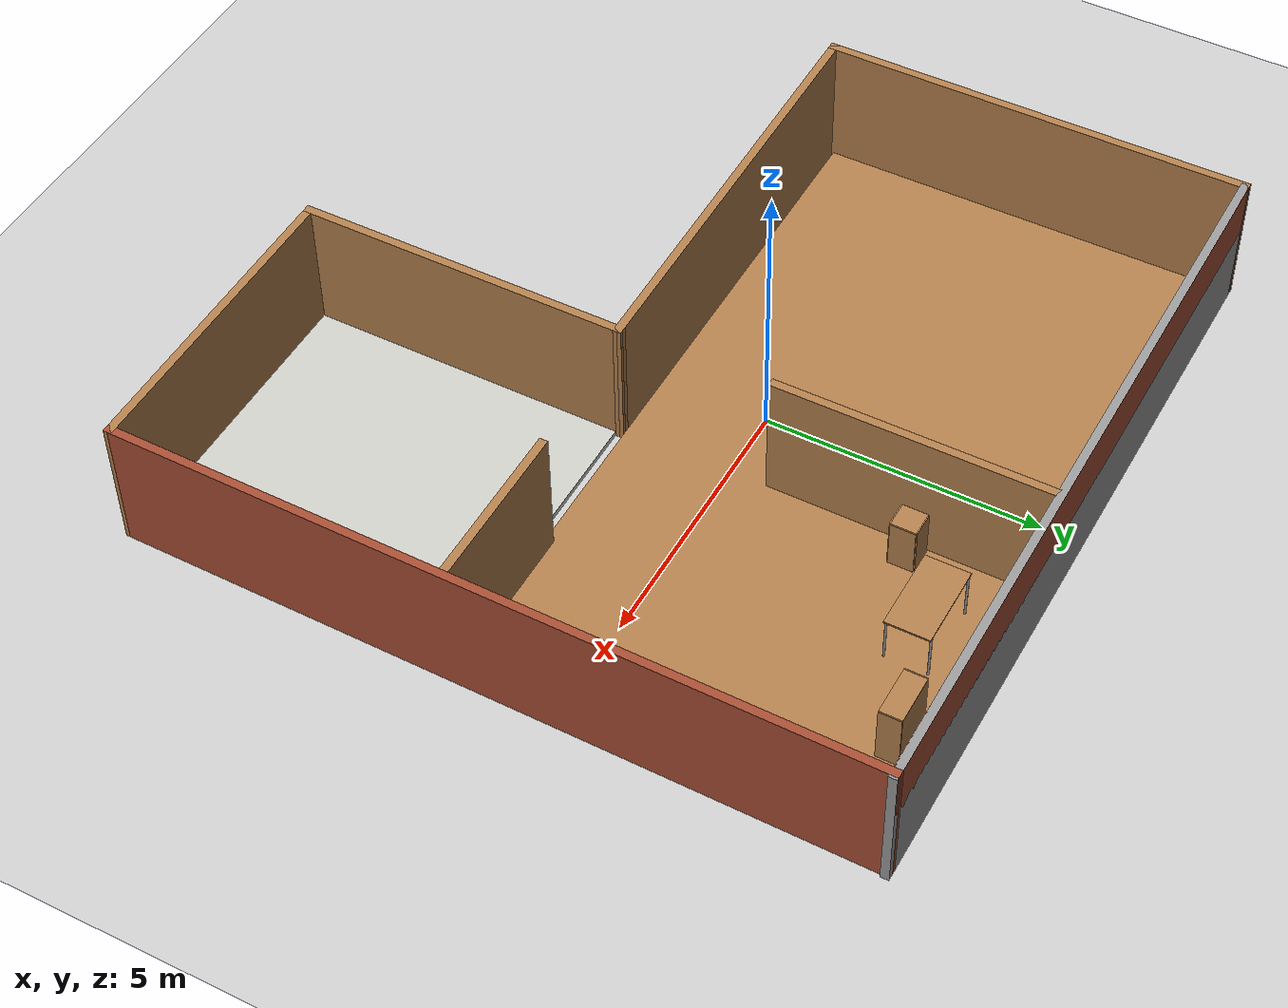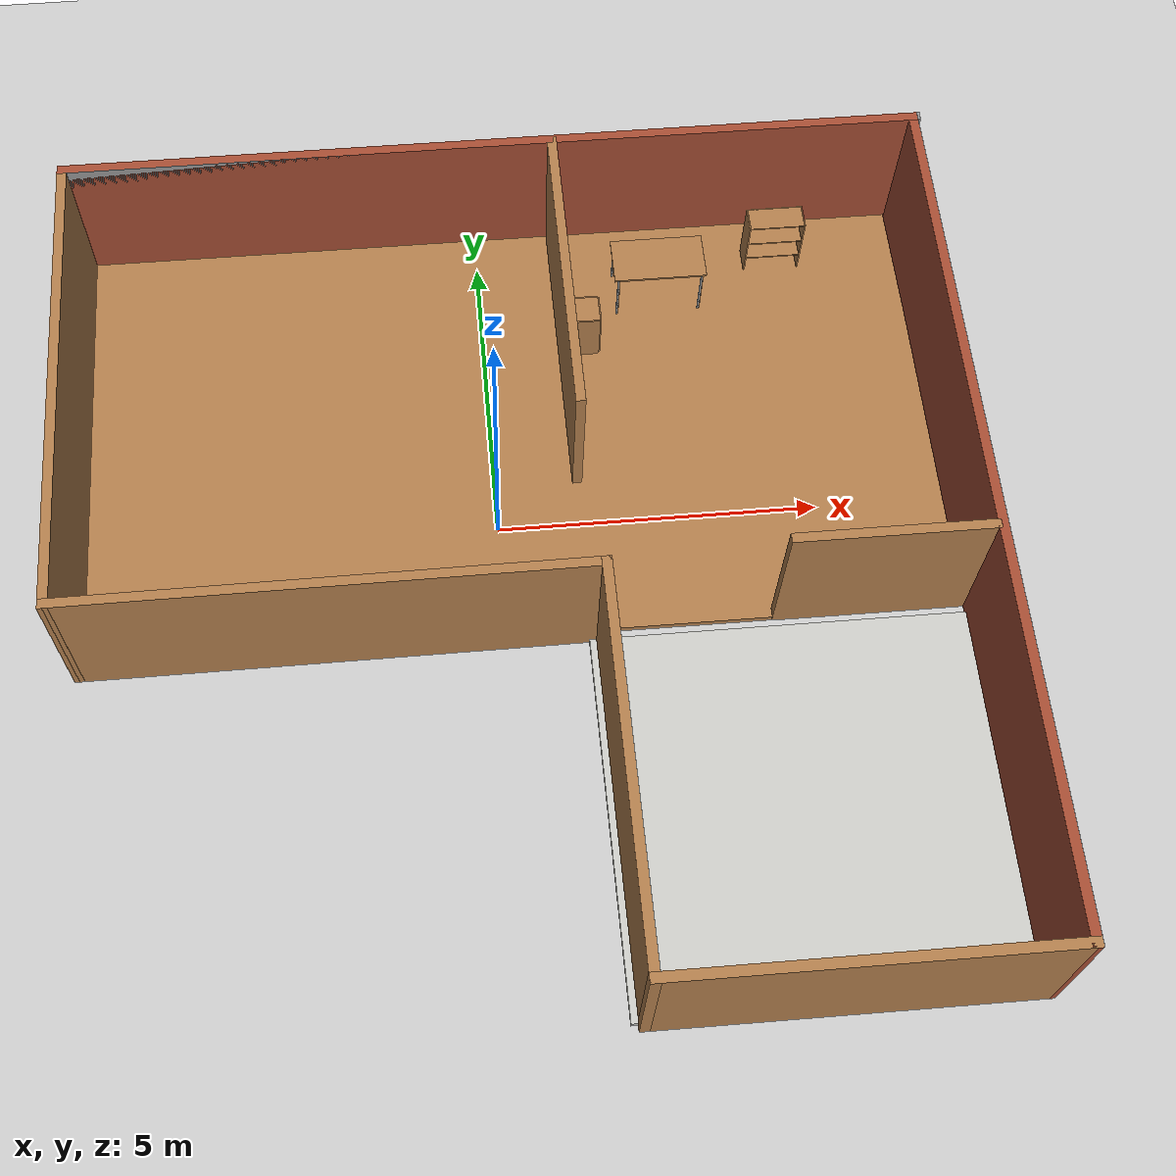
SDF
<sdf version="1.6">
 <world name="default">
  <light name="sun" type="directional">
   <pose>0 0 10 0 -0 0</pose>
   <diffuse>0.8 0.8 0.8 1</diffuse>
   <specular>0.2 0.2 0.2 1</specular>
   <attenuation>
    <range>1000</range>
    <constant>0.9</constant>
    <linear>0.01</linear>
    <quadratic>0.001</quadratic>
   </attenuation>
   <direction>-0.5 0.1 -0.9</direction>
  </light>
  <model name="ground_plane">
   <static>1</static>
   <link name="link">
    <collision name="collision">
     <geometry><plane><normal>0 0 1</normal><size>100 100</size></plane></geometry>
     <surface><friction><ode><mu>100</mu><mu2>50</mu2></ode></friction></surface>
    </collision>
    <visual name="visual">
     <cast_shadows>0</cast_shadows>
     <geometry><plane><normal>0 0 1</normal><size>100 100</size></plane></geometry>
     <material>
      <script><uri>file://media/materials/scripts/gazebo.material</uri><name>Gazebo/Grey</name></script>
     </material>
    </visual>
   </link>
  </model>
  <gravity>0 0 -9.8</gravity>
  <magnetic_field>6e-06 2.3e-05 -4.2e-05</magnetic_field>
  <atmosphere type="adiabatic"/>
  <physics name="default_physics" default="0" type="ode">
   <max_step_size>0.001</max_step_size>
   <real_time_factor>1</real_time_factor>
   <real_time_update_rate>1000</real_time_update_rate>
  </physics>
  <scene><ambient>0.4 0.4 0.4 1</ambient><background>0.7 0.7 0.7 1</background><shadows>1</shadows></scene>
  <spherical_coordinates>
   <surface_model>EARTH_WGS84</surface_model>
   <latitude_deg>0</latitude_deg>
   <longitude_deg>0</longitude_deg>
   <elevation>0</elevation>
   <heading_deg>0</heading_deg>
  </spherical_coordinates>
  <model name="boring_room">
   <pose>0.34321 -1.10362 0 0 -0 0</pose>
   <link name="Wall_19">
    <collision name="Wall_19_Collision">
     <geometry><box><size>13.75 0.15 2.5</size></box></geometry>
     <pose>0 0 1.25 0 -0 0</pose>
    </collision>
    <visual name="Wall_19_Visual">
     <pose>0 0 1.25 0 -0 0</pose>
     <geometry><box><size>13.75 0.15 2.5</size></box></geometry>
     <material>
      <script><uri>file://media/materials/scripts/gazebo.material</uri><name>Gazebo/Bricks</name></script>
      <ambient>1 1 1 1</ambient>
     </material>
     <meta><layer>0</layer></meta>
    </visual>
    <pose>-0.020088 6.75954 0 0 -0 0</pose>
   </link>
   <link name="Wall_20">
    <collision name="Wall_20_Collision">
     <geometry><box><size>13.6696 0.15 2.5</size></box></geometry>
     <pose>0 0 1.25 0 -0 0</pose>
    </collision>
    <visual name="Wall_20_Visual">
     <pose>0 0 1.25 0 -0 0</pose>
     <geometry><box><size>13.6696 0.15 2.5</size></box></geometry>
     <material>
      <script><uri>file://media/materials/scripts/gazebo.material</uri><name>Gazebo/Bricks</name></script>
      <ambient>1 1 1 1</ambient>
     </material>
     <meta><layer>0</layer></meta>
    </visual>
    <pose>6.71923 0 0 0 0 -1.57977</pose>
   </link>
   <link name="Wall_21">
    <collision name="Wall_21_Collision">
     <geometry><box><size>5.75 0.15 2.5</size></box></geometry>
     <pose>0 0 1.25 0 -0 0</pose>
    </collision>
    <visual name="Wall_21_Visual">
     <pose>0 0 1.25 0 -0 0</pose>
     <geometry><box><size>5.75 0.15 2.5</size></box></geometry>
     <material>
      <script><uri>file://media/materials/scripts/gazebo.material</uri><name>Gazebo/Wood</name></script>
      <ambient>1 1 1 1</ambient>
     </material>
     <meta><layer>0</layer></meta>
    </visual>
    <pose>3.85854 -6.75954 0 0 -0 3.14159</pose>
   </link>
   <link name="Wall_22">
    <collision name="Wall_22_Collision">
     <geometry><box><size>6.04059 0.15 2.5</size></box></geometry>
     <pose>0 0 1.25 0 -0 0</pose>
    </collision>
    <visual name="Wall_22_Visual">
     <pose>0 0 1.25 0 -0 0</pose>
     <geometry><box><size>6.04059 0.15 2.5</size></box></geometry>
     <material>
      <script><uri>file://media/materials/scripts/gazebo.material</uri><name>Gazebo/Wood</name></script>
      <ambient>1 1 1 1</ambient>
     </material>
     <meta><layer>0</layer></meta>
    </visual>
    <pose>1.05855 -3.81432 0 0 -0 1.5708</pose>
   </link>
   <link name="Wall_23">
    <collision name="Wall_23_Collision">
     <geometry><box><size>8.0001 0.15 2.5</size></box></geometry>
     <pose>0 0 1.25 0 -0 0</pose>
    </collision>
    <visual name="Wall_23_Visual">
     <pose>0 0 1.25 0 -0 0</pose>
     <geometry><box><size>8.0001 0.15 2.5</size></box></geometry>
     <material>
      <script><uri>file://media/materials/scripts/gazebo.material</uri><name>Gazebo/Wood</name></script>
      <ambient>1 1 1 1</ambient>
     </material>
     <meta><layer>0</layer></meta>
    </visual>
    <pose>-2.86646 -0.889317 0 0 0 -3.13644</pose>
   </link>
   <link name="Wall_24">
    <collision name="Wall_24_Collision">
     <geometry><box><size>7.81914 0.15 2.5</size></box></geometry>
     <pose>0 0 1.25 0 -0 0</pose>
    </collision>
    <visual name="Wall_24_Visual">
     <pose>0 0 1.25 0 -0 0</pose>
     <geometry><box><size>7.81914 0.15 2.5</size></box></geometry>
     <material>
      <script><uri>file://media/materials/scripts/gazebo.material</uri><name>Gazebo/Wood</name></script>
      <ambient>1 1 1 1</ambient>
     </material>
     <meta><layer>0</layer></meta>
    </visual>
    <pose>-6.80577 2.925 0 0 -0 1.57453</pose>
   </link>
   <link name="Wall_26">
    <collision name="Wall_26_Collision">
     <geometry><box><size>5 0.15 2.5</size></box></geometry>
     <pose>0 0 1.25 0 -0 0</pose>
    </collision>
    <visual name="Wall_26_Visual">
     <pose>0 0 1.25 0 -0 0</pose>
     <geometry><box><size>5 0.15 2.5</size></box></geometry>
     <material>
      <script><uri>file://media/materials/scripts/gazebo.material</uri><name>Gazebo/Wood</name></script>
      <ambient>1 1 1 1</ambient>
     </material>
     <meta><layer>0</layer></meta>
    </visual>
    <pose>0.947383 4.29409 0 0 0 -1.5708</pose>
   </link>
   <link name="Wall_28">
    <collision name="Wall_28_Collision">
     <geometry><box><size>3 0.15 2.5</size></box></geometry>
     <pose>0 0 1.25 0 -0 0</pose>
    </collision>
    <visual name="Wall_28_Visual">
     <pose>0 0 1.25 0 -0 0</pose>
     <geometry><box><size>3 0.15 2.5</size></box></geometry>
     <material>
      <script><uri>file://media/materials/scripts/gazebo.material</uri><name>Gazebo/Wood</name></script>
      <ambient>1 1 1 1</ambient>
     </material>
     <meta><layer>0</layer></meta>
    </visual>
    <pose>5.18616 -0.724738 0 0 -0 3.14159</pose>
   </link>
   <link name="Wall_30">
    <collision name="Wall_30_Collision">
     <geometry><box><size>13.75 0.15 2.5</size></box></geometry>
     <pose>0 0 1.25 0 -0 0</pose>
    </collision>
    <visual name="Wall_30_Visual">
     <pose>0 0 1.25 0 -0 0</pose>
     <geometry><box><size>13.75 0.15 2.5</size></box></geometry>
     <material>
      <script><uri>file://media/materials/scripts/gazebo.material</uri><name>Gazebo/Grey</name></script>
      <ambient>1 1 1 1</ambient>
     </material>
     <meta><layer>0</layer></meta>
    </visual>
    <pose>0.020367 6.75954 0 0 -0 0</pose>
   </link>
   <link name="Wall_32">
    <collision name="Wall_32_Collision">
     <geometry><box><size>13.5 7.5 0.1</size></box></geometry>
     <pose>0 0 0.05 0 -0 0</pose>
    </collision>
    <visual name="Wall_32_Visual">
     <pose>0 0 0.05 0 -0 0</pose>
     <geometry><box><size>13.5 7.5 0.1</size></box></geometry>
     <material>
      <script><uri>file://media/materials/scripts/gazebo.material</uri><name>Gazebo/Wood</name></script>
      <ambient>1 1 1 1</ambient>
     </material>
     <meta><layer>0</layer></meta>
    </visual>
    <pose>-0.064541 2.95687 0 0 -0 0</pose>
   </link>
   <link name="Wall_39">
    <collision name="Wall_39_Collision">
     <geometry><box><size>5.81 5.8 0.1</size></box></geometry>
     <pose>0 0 0.05 0 -0 0</pose>
    </collision>
    <visual name="Wall_39_Visual">
     <pose>0 0 0.05 0 -0 0</pose>
     <geometry><box><size>5.81 5.8 0.1</size></box></geometry>
     <material>
      <script><uri>file://media/materials/scripts/gazebo.material</uri><name>Gazebo/CeilingTiled</name></script>
      <ambient>1 1 1 1</ambient>
     </material>
     <meta><layer>0</layer></meta>
    </visual>
    <pose>3.78472 -3.84072 0 0 -0 0</pose>
   </link>
   <static>1</static>
  </model>
  <model name="table">
   <static>1</static>
   <link name="link">
    <collision name="surface">
     <pose>0 0 1 0 -0 0</pose>
     <geometry><box><size>1.5 0.8 0.03</size></box></geometry>
     <surface><friction><ode><mu>0.6</mu><mu2>0.6</mu2></ode></friction></surface>
    </collision>
    <visual name="visual1">
     <pose>0 0 1 0 -0 0</pose>
     <geometry><box><size>1.5 0.8 0.03</size></box></geometry>
     <material>
      <script><uri>file://media/materials/scripts/gazebo.material</uri><name>Gazebo/Wood</name></script>
     </material>
    </visual>
    <collision name="front_left_leg">
     <pose>0.68 0.38 0.5 0 -0 0</pose>
     <geometry><cylinder><radius>0.02</radius><length>1</length></cylinder></geometry>
    </collision>
    <visual name="front_left_leg">
     <pose>0.68 0.38 0.5 0 -0 0</pose>
     <geometry><cylinder><radius>0.02</radius><length>1</length></cylinder></geometry>
     <material>
      <script><uri>file://media/materials/scripts/gazebo.material</uri><name>Gazebo/Grey</name></script>
     </material>
    </visual>
    <collision name="front_right_leg">
     <pose>0.68 -0.38 0.5 0 -0 0</pose>
     <geometry><cylinder><radius>0.02</radius><length>1</length></cylinder></geometry>
    </collision>
    <visual name="front_right_leg">
     <pose>0.68 -0.38 0.5 0 -0 0</pose>
     <geometry><cylinder><radius>0.02</radius><length>1</length></cylinder></geometry>
     <material>
      <script><uri>file://media/materials/scripts/gazebo.material</uri><name>Gazebo/Grey</name></script>
     </material>
    </visual>
    <collision name="back_right_leg">
     <pose>-0.68 -0.38 0.5 0 -0 0</pose>
     <geometry><cylinder><radius>0.02</radius><length>1</length></cylinder></geometry>
    </collision>
    <visual name="back_right_leg">
     <pose>-0.68 -0.38 0.5 0 -0 0</pose>
     <geometry><cylinder><radius>0.02</radius><length>1</length></cylinder></geometry>
     <material>
      <script><uri>file://media/materials/scripts/gazebo.material</uri><name>Gazebo/Grey</name></script>
     </material>
    </visual>
    <collision name="back_left_leg">
     <pose>-0.68 0.38 0.5 0 -0 0</pose>
     <geometry><cylinder><radius>0.02</radius><length>1</length></cylinder></geometry>
    </collision>
    <visual name="back_left_leg">
     <pose>-0.68 0.38 0.5 0 -0 0</pose>
     <geometry><cylinder><radius>0.02</radius><length>1</length></cylinder></geometry>
     <material>
      <script><uri>file://media/materials/scripts/gazebo.material</uri><name>Gazebo/Grey</name></script>
     </material>
    </visual>
   </link>
   <pose>2.93877 4.28149 0 0 -0 0</pose>
  </model>
  <model name="bookshelf">
   <static>1</static>
   <link name="link">
    <inertial><mass>1</mass></inertial>
    <collision name="back">
     <pose>0 0.005 0.6 0 -0 0</pose>
     <geometry><box><size>0.9 0.01 1.2</size></box></geometry>
    </collision>
    <visual name="visual1">
     <pose>0 0.005 0.6 0 -0 0</pose>
     <geometry><box><size>0.9 0.01 1.2</size></box></geometry>
     <material>
      <script><uri>file://media/materials/scripts/gazebo.material</uri><name>Gazebo/Wood</name></script>
     </material>
    </visual>
    <collision name="left_side">
     <pose>0.45 -0.195 0.6 0 -0 0</pose>
     <geometry><box><size>0.02 0.4 1.2</size></box></geometry>
    </collision>
    <visual name="visual2">
     <pose>0.45 -0.195 0.6 0 -0 0</pose>
     <geometry><box><size>0.02 0.4 1.2</size></box></geometry>
     <material>
      <script><uri>file://media/materials/scripts/gazebo.material</uri><name>Gazebo/Wood</name></script>
     </material>
    </visual>
    <collision name="right_side">
     <pose>-0.45 -0.195 0.6 0 -0 0</pose>
     <geometry><box><size>0.02 0.4 1.2</size></box></geometry>
    </collision>
    <visual name="visual3">
     <pose>-0.45 -0.195 0.6 0 -0 0</pose>
     <geometry><box><size>0.02 0.4 1.2</size></box></geometry>
     <material>
      <script><uri>file://media/materials/scripts/gazebo.material</uri><name>Gazebo/Wood</name></script>
     </material>
    </visual>
    <collision name="bottom">
     <pose>0 -0.195 0.03 0 -0 0</pose>
     <geometry><box><size>0.88 0.4 0.06</size></box></geometry>
    </collision>
    <visual name="visual4">
     <pose>0 -0.195 0.03 0 -0 0</pose>
     <geometry><box><size>0.88 0.4 0.06</size></box></geometry>
     <material>
      <script><uri>file://media/materials/scripts/gazebo.material</uri><name>Gazebo/Wood</name></script>
     </material>
    </visual>
    <collision name="top">
     <pose>0 -0.195 1.19 0 -0 0</pose>
     <geometry><box><size>0.88 0.4 0.02</size></box></geometry>
    </collision>
    <visual name="visual5">
     <pose>0 -0.195 1.19 0 -0 0</pose>
     <geometry><box><size>0.88 0.4 0.02</size></box></geometry>
     <material>
      <script><uri>file://media/materials/scripts/gazebo.material</uri><name>Gazebo/Wood</name></script>
     </material>
    </visual>
    <collision name="low_shelf">
     <pose>0 -0.195 0.43 0 -0 0</pose>
     <geometry><box><size>0.88 0.4 0.02</size></box></geometry>
    </collision>
    <visual name="visual6">
     <pose>0 -0.195 0.43 0 -0 0</pose>
     <geometry><box><size>0.88 0.4 0.02</size></box></geometry>
     <material>
      <script><uri>file://media/materials/scripts/gazebo.material</uri><name>Gazebo/Wood</name></script>
     </material>
    </visual>
    <collision name="high_shelf">
     <pose>0 -0.195 0.8 0 -0 0</pose>
     <geometry><box><size>0.88 0.4 0.02</size></box></geometry>
    </collision>
    <visual name="visual7">
     <pose>0 -0.195 0.8 0 -0 0</pose>
     <geometry><box><size>0.88 0.4 0.02</size></box></geometry>
     <material>
      <script><uri>file://media/materials/scripts/gazebo.material</uri><name>Gazebo/Wood</name></script>
     </material>
    </visual>
   </link>
   <pose>4.93597 4.99717 0 0 -0 0</pose>
  </model>
  <model name="cabinet">
   <static>1</static>
   <link name="cabinet_bottom_plate">
    <inertial>
     <pose>0 0 -1 0 -0 0</pose>
     <inertia><ixx>2.05</ixx><ixy>0</ixy><ixz>0</ixz><iyy>2.05</iyy><iyz>0</iyz><izz>2.05</izz></inertia>
     <mass>25</mass>
    </inertial>
    <collision name="cabinet_bottom_plate_geom">
     <pose>0 0 0.01 0 -0 0</pose>
     <geometry><box><size>0.45 0.45 0.02</size></box></geometry>
    </collision>
    <visual name="cabinet_bottom_plate_geom_visual">
     <pose>0 0 0.01 0 -0 0</pose>
     <geometry><box><size>0.45 0.45 0.02</size></box></geometry>
     <material>
      <script><uri>file://media/materials/scripts/gazebo.material</uri><name>Gazebo/Wood</name></script>
     </material>
    </visual>
    <collision name="cabinet_bottom_plate_geom_cabinet_back_plate">
     <pose>0.235 0 0.51 0 -0 0</pose>
     <geometry><box><size>0.02 0.45 1.02</size></box></geometry>
    </collision>
    <visual name="cabinet_bottom_plate_geom_cabinet_back_plate_visual">
     <pose>0.235 0 0.51 0 -0 0</pose>
     <geometry><box><size>0.02 0.45 1.02</size></box></geometry>
     <material>
      <script><uri>file://media/materials/scripts/gazebo.material</uri><name>Gazebo/Wood</name></script>
     </material>
    </visual>
    <collision name="cabinet_bottom_plate_geom_cabinet_left_plate">
     <pose>0 0.235 0.51 0 -0 0</pose>
     <geometry><box><size>0.45 0.02 1.02</size></box></geometry>
    </collision>
    <visual name="cabinet_bottom_plate_geom_cabinet_left_plate_visual">
     <pose>0 0.235 0.51 0 -0 0</pose>
     <geometry><box><size>0.45 0.02 1.02</size></box></geometry>
     <material>
      <script><uri>file://media/materials/scripts/gazebo.material</uri><name>Gazebo/Wood</name></script>
     </material>
    </visual>
    <collision name="cabinet_bottom_plate_geom_cabinet_middle_plate">
     <pose>0 0 0.51 0 -0 0</pose>
     <geometry><box><size>0.45 0.45 0.02</size></box></geometry>
    </collision>
    <visual name="cabinet_bottom_plate_geom_cabinet_middle_plate_visual">
     <pose>0 0 0.51 0 -0 0</pose>
     <geometry><box><size>0.45 0.45 0.02</size></box></geometry>
     <material>
      <script><uri>file://media/materials/scripts/gazebo.material</uri><name>Gazebo/Wood</name></script>
     </material>
    </visual>
    <collision name="cabinet_bottom_plate_geom_cabinet_right_plate">
     <pose>0 -0.235 0.51 0 -0 0</pose>
     <geometry><box><size>0.45 0.02 1.02</size></box></geometry>
    </collision>
    <visual name="cabinet_bottom_plate_geom_cabinet_right_plate_visual">
     <pose>0 -0.235 0.51 0 -0 0</pose>
     <geometry><box><size>0.45 0.02 1.02</size></box></geometry>
     <material>
      <script><uri>file://media/materials/scripts/gazebo.material</uri><name>Gazebo/Wood</name></script>
     </material>
    </visual>
    <collision name="cabinet_bottom_plate_geom_cabinet_top_plate">
     <pose>0 0 1.01 0 -0 0</pose>
     <geometry><box><size>0.45 0.45 0.02</size></box></geometry>
    </collision>
    <visual name="cabinet_bottom_plate_geom_cabinet_top_plate_visual">
     <pose>0 0 1.01 0 -0 0</pose>
     <geometry><box><size>0.45 0.45 0.02</size></box></geometry>
     <material>
      <script><uri>file://media/materials/scripts/gazebo.material</uri><name>Gazebo/Wood</name></script>
     </material>
    </visual>
   </link>
   <pose>1.64885 3.36056 0 0 -0 0</pose>
  </model>
 </world>
</sdf>
